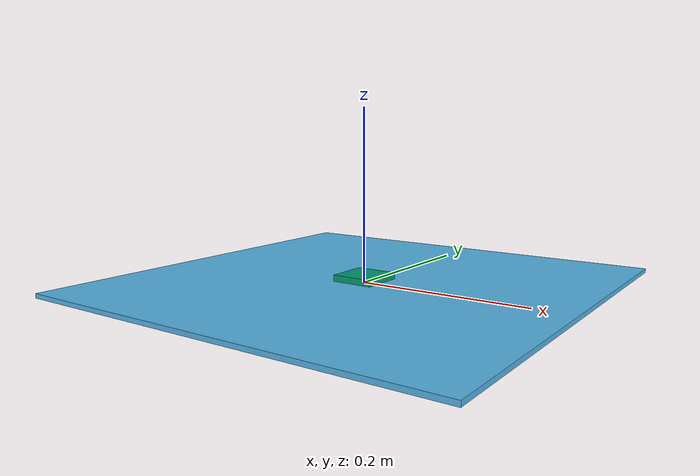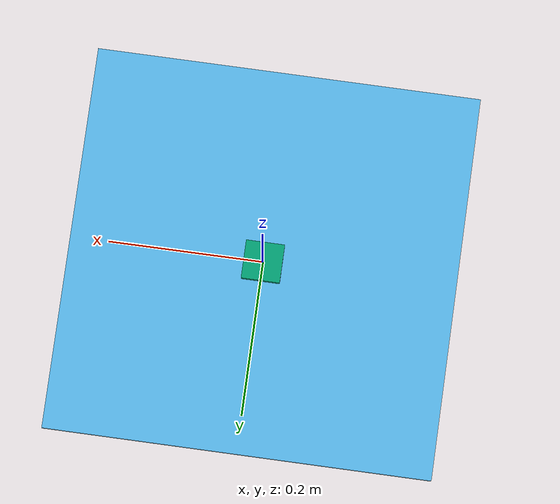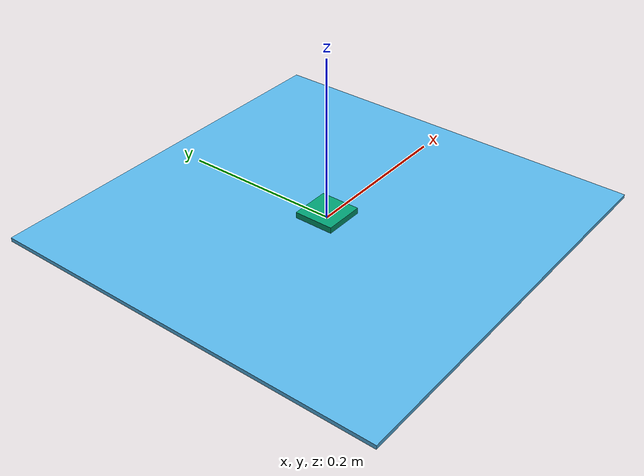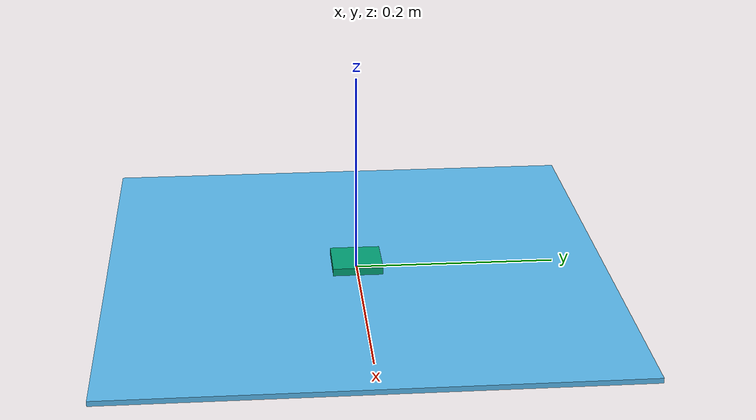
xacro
<?xml version="1.0"?>
<robot name="motor" xmlns:xacro="http://www.ros.org/wiki/xacro">

  <xacro:include filename="$(find nowtech_actuator_models)/xacro/inertia_calc.xacro"/>
  <xacro:include filename="$(find nowtech_actuator_models)/xacro/actuator.xacro"/>
  <xacro:include filename="$(find nowtech_actuator_models)/xacro/motor.xacro"/>
  <xacro:include filename="$(find nowtech_actuator_models)/xacro/light.xacro"/>
  <xacro:include filename="$(find nowtech_actuator_models)/xacro/screen.xacro"/>

  <link name="base_footprint"/>

  <joint name="base_joint" type="fixed">
      <parent link="base_footprint"/>
      <child link="base_link"/>
      <origin rpy="0 0 0" xyz="0 0 0"/>
  </joint>

  <link name="base_link">
      <visual>
        <geometry>
          <box size="0.5 0.5 0.005"/>
        </geometry>
      </visual>
      <collision>
        <geometry>
          <box size="0.5 0.5 0.005"/>
        </geometry>
      </collision>
      <inertial>
        <geometry>
          <box size="0.5 0.5 0.005"/>
        </geometry>
        <mass value="500"/>
        <xacro:box_inertia m="500" x="0.1" y="0.1" z="0.05"/>
      </inertial>
  </link>

  <link name="one_link">
    <visual>
      <geometry>
        <box size="0.05 0.05 0.02"/>
      </geometry>
    </visual>
    <collision>
      <geometry>
        <box size="0.05 0.05 0.02"/>
      </geometry>
    </collision>
    <inertial>
      <geometry>
        <box size="0.05 0.05 0.02"/>
      </geometry>
      <mass value="1"/>
      <xacro:box_inertia m="1" x="0.05" y="0.05" z="0.02"/>
    </inertial>
  </link>

  <xacro:dc_motor motor_name="one_motor" parent_link="base_link" child_link="one_link">
    <xacro:property name="params_yaml" value="$(find nowtech_actuator_models)/params/dc_motor.yaml"/>
    <origin xyz="0 -0.2 0.3" rpy="0 0 0"/>
  </xacro:dc_motor>

  <link name="another_link">
    <visual>
      <geometry>
        <box size="0.05 0.05 0.02"/>
      </geometry>
    </visual>
    <collision>
      <geometry>
        <box size="0.05 0.05 0.02"/>
      </geometry>
    </collision>
    <inertial>
      <geometry>
        <box size="0.05 0.05 0.02"/>
      </geometry>
      <mass value="1"/>
      <xacro:box_inertia m="1" x="0.05" y="0.05" z="0.02"/>
    </inertial>
  </link>

  <xacro:dc_motor motor_name="another_motor" parent_link="base_link" child_link="another_link">
    <xacro:property name="params_yaml" value="$(find nowtech_actuator_models)/params/dc_motor.yaml"/>
    <origin xyz="0 0.2 0.3" rpy="0 0 0"/>
  </xacro:dc_motor>

</robot>

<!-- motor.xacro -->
<robot xmlns:xacro="http://www.ros.org/wiki/xacro">

<!-- ODE joint motor macro -->
<xacro:macro name="joint_motor" params="motor_name parent_link child_link *origin">

  <xacro:property name="motor_param"  value="${load_yaml(params_yaml)}"/>

  <joint name="${motor_name}" type="continuous">
      <parent link="${parent_link}"/>
      <child link="${child_link}"/>
      <xacro:insert_block name="origin"/>
      <axis xyz="0 0 1"/>
      <dynamics damping="${motor_param['joint_damping']}" friction="${motor_param['joint_friction']}"/>
  </joint>

  <gazebo>
    <plugin name="motor_plugin" filename="libnowtech_gazebo_ros_joint_motor.so">
      <command_topic>${motor_name}/command</command_topic>
      <velocity_topic>${motor_name}/velocity</velocity_topic>
      <encoder_topic>${motor_name}/encoder</encoder_topic>
      <motor_shaft_joint>${motor_name}</motor_shaft_joint>
      <motor_wrench_frame>${child_link}</motor_wrench_frame>
      <ode_joint_motor_fmax>${motor_param['ode_joint_motor_fmax']}</ode_joint_motor_fmax>
      <ode_joint_fudge_factor>${motor_param['ode_joint_fudge_factor']}</ode_joint_fudge_factor>
      <publish_velocity>${motor_param['publish_velocity']}</publish_velocity>
      <publish_encoder>${motor_param['publish_encoder']}</publish_encoder>
      <publish_motor_joint_state>${motor_param['publish_motor_joint_state']}</publish_motor_joint_state>
      <update_rate>${motor_param['update_rate']}</update_rate>
      <encoder_ppr>${motor_param['encoder_ppr']}</encoder_ppr>
      <encoder_to_shaft_ratio>${motor_param['encoder_to_shaft_ratio']}</encoder_to_shaft_ratio>
      <rosDebugLevel>Debug</rosDebugLevel>
    </plugin>
  </gazebo>

</xacro:macro>

<!-- EMDC motor macro -->
<xacro:macro name="dc_motor" params="motor_name parent_link child_link *origin">
  <xacro:property name="motor_param" value="${load_yaml(params_yaml)}"/>
  <joint name="${motor_name}" type="continuous">
      <parent link="${parent_link}"/>
      <child link="${child_link}"/>
      <xacro:insert_block name="origin"/>
      <axis xyz="0 0 1"/>
      <dynamics damping="${motor_param['joint_damping']}" friction="${motor_param['joint_friction']}"/>
  </joint>

  <gazebo reference="${motor_name}">
    <provideFeedback>true</provideFeedback>
  </gazebo>

  <gazebo>
    <plugin name="${motor_name}_ft_sensor" filename="libgazebo_ros_ft_sensor.so">
       <updateRate>100.0</updateRate>
       <topicName>${motor_name}/force_sensor</topicName>
       <jointName>${motor_name}</jointName>
     </plugin>
  </gazebo>

  <gazebo>
    <plugin name="${motor_name}" filename="libnowtech_gazebo_ros_dc_motor.so">
      <motor_shaft_joint>${motor_name}</motor_shaft_joint>
      <motor_wrench_frame>${child_link}</motor_wrench_frame>

      <command_topic>${motor_name}/voltage_norm</command_topic>
      <velocity_topic>${motor_name}/velocity</velocity_topic>
      <encoder_topic>${motor_name}/encoder</encoder_topic>
      <current_topic>${motor_name}/current</current_topic>
      <supply_topic>${motor_name}/supply_voltage</supply_topic>

      <publish_encoder>${motor_param['publish_encoder']}</publish_encoder>
      <publish_velocity>${motor_param['publish_velocity']}</publish_velocity>
      <publish_current>${motor_param['publish_current']}</publish_current>
      <publish_motor_joint_state>${motor_param['publish_motor_joint_state']}</publish_motor_joint_state>

      <update_rate>${motor_param['update_rate']}</update_rate>
      <motor_nominal_voltage>${motor_param['motor_nominal_voltage']}</motor_nominal_voltage>
      <moment_of_inertia>${motor_param['moment_of_inertia']}</moment_of_inertia>
      <armature_damping_ratio>${motor_param['armature_damping_ratio']}</armature_damping_ratio>
      <electromotive_force_constant>${motor_param['electromotive_force_constant']}</electromotive_force_constant>
      <electric_resistance>${motor_param['electric_resistance']}</electric_resistance>
      <electric_inductance>${motor_param['electric_inductance']}</electric_inductance>
      <gear_ratio>${motor_param['gear_ratio']}</gear_ratio>
      <encoder_ppr>${motor_param['encoder_ppr']}</encoder_ppr>
      <velocity_noise>${motor_param['velocity_noise']}</velocity_noise>
      <rosDebugLevel>Debug</rosDebugLevel>

    </plugin>
  </gazebo>

</xacro:macro>

</robot>
